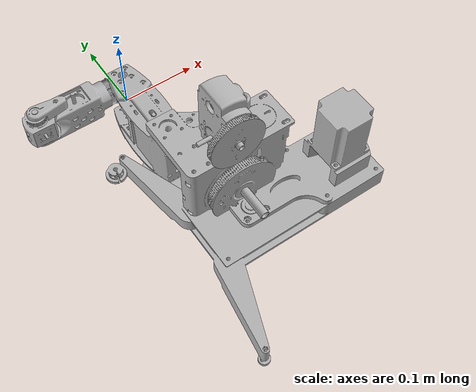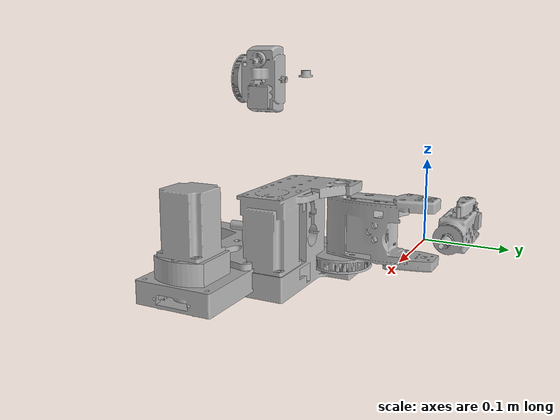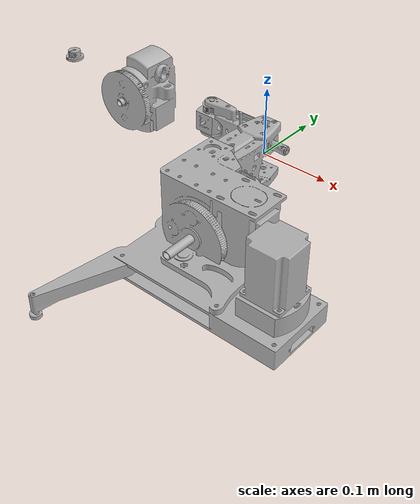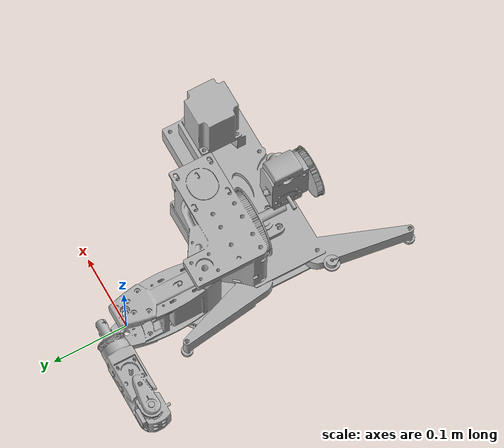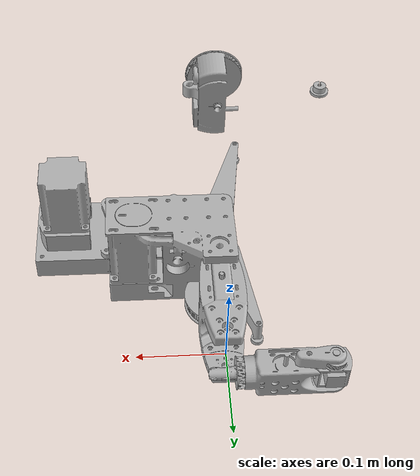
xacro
<?xml version="1.0" ?>
<robot name="srm_urdf" xmlns:xacro="http://www.ros.org/wiki/xacro">

<xacro:include filename="$(find srm_urdf_description)/urdf/materials.xacro" />
<xacro:include filename="$(find srm_urdf_description)/urdf/srm_urdf.trans" />
<xacro:include filename="$(find srm_urdf_description)/urdf/srm_urdf.gazebo" />
<link name="base_link">
  <inertial>
    <origin xyz="0.10568381868504924 -0.22501556785667357 -0.014402567458913605" rpy="0 0 0"/>
    <mass value="6.7691812168031795"/>
    <inertia ixx="0.024906" iyy="0.065241" izz="0.072898" ixy="-0.006015" iyz="-0.00098" ixz="-0.011564"/>
  </inertial>
  <visual>
    <origin xyz="0 0 0" rpy="0 0 0"/>
    <geometry>
      <mesh filename="package://srm_urdf_description/meshes/base_link.stl" scale="0.001 0.001 0.001"/>
    </geometry>
    <material name="silver"/>
  </visual>
  <collision>
    <origin xyz="0 0 0" rpy="0 0 0"/>
    <geometry>
      <mesh filename="package://srm_urdf_description/meshes/base_link.stl" scale="0.001 0.001 0.001"/>
    </geometry>
  </collision>
</link>

<link name="link_0_1">
  <inertial>
    <origin xyz="0.0057414043781948 -0.0017004352036209813 0.04202043065382762" rpy="0 0 0"/>
    <mass value="7.354010694296477"/>
    <inertia ixx="0.013079" iyy="0.016572" izz="0.022247" ixy="8.9e-05" iyz="0.000312" ixz="0.000187"/>
  </inertial>
  <visual>
    <origin xyz="-0.047 0.219 0.0135" rpy="0 0 0"/>
    <geometry>
      <mesh filename="package://srm_urdf_description/meshes/link_0_1.stl" scale="0.001 0.001 0.001"/>
    </geometry>
    <material name="silver"/>
  </visual>
  <collision>
    <origin xyz="-0.047 0.219 0.0135" rpy="0 0 0"/>
    <geometry>
      <mesh filename="package://srm_urdf_description/meshes/link_0_1.stl" scale="0.001 0.001 0.001"/>
    </geometry>
  </collision>
</link>

<link name="link_1_1">
  <inertial>
    <origin xyz="0.0007062283060266377 0.00121973453428173 0.03249181663373098" rpy="0 0 0"/>
    <mass value="2.8137687577682"/>
    <inertia ixx="0.006245" iyy="0.00427" izz="0.003148" ixy="2.9e-05" iyz="0.000882" ixz="-4.3e-05"/>
  </inertial>
  <visual>
    <origin xyz="-0.0 0.21875 -0.0815" rpy="0 0 0"/>
    <geometry>
      <mesh filename="package://srm_urdf_description/meshes/link_1_1.stl" scale="0.001 0.001 0.001"/>
    </geometry>
    <material name="silver"/>
  </visual>
  <collision>
    <origin xyz="-0.0 0.21875 -0.0815" rpy="0 0 0"/>
    <geometry>
      <mesh filename="package://srm_urdf_description/meshes/link_1_1.stl" scale="0.001 0.001 0.001"/>
    </geometry>
  </collision>
</link>

<link name="link_2_1">
  <inertial>
    <origin xyz="0.005655179920826477 -0.03079535787345819 -0.0006639946683160425" rpy="0 0 0"/>
    <mass value="1.0334607047766426"/>
    <inertia ixx="0.000804" iyy="0.00064" izz="0.000441" ixy="-3.7e-05" iyz="2e-06" ixz="1e-06"/>
  </inertial>
  <visual>
    <origin xyz="-0.0 0.19625 -0.1915" rpy="0 0 0"/>
    <geometry>
      <mesh filename="package://srm_urdf_description/meshes/link_2_1.stl" scale="0.001 0.001 0.001"/>
    </geometry>
    <material name="silver"/>
  </visual>
  <collision>
    <origin xyz="-0.0 0.19625 -0.1915" rpy="0 0 0"/>
    <geometry>
      <mesh filename="package://srm_urdf_description/meshes/link_2_1.stl" scale="0.001 0.001 0.001"/>
    </geometry>
  </collision>
</link>

<link name="link_3_1">
  <inertial>
    <origin xyz="-0.04727234675295872 0.00035711161454010654 8.218171693413767e-06" rpy="0 0 0"/>
    <mass value="0.8514020966909932"/>
    <inertia ixx="0.000228" iyy="0.000818" izz="0.000894" ixy="-1.1e-05" iyz="-0.0" ixz="-0.0"/>
  </inertial>
  <visual>
    <origin xyz="0.009 0.21925 -0.2175" rpy="0 0 0"/>
    <geometry>
      <mesh filename="package://srm_urdf_description/meshes/link_3_1.stl" scale="0.001 0.001 0.001"/>
    </geometry>
    <material name="silver"/>
  </visual>
  <collision>
    <origin xyz="0.009 0.21925 -0.2175" rpy="0 0 0"/>
    <geometry>
      <mesh filename="package://srm_urdf_description/meshes/link_3_1.stl" scale="0.001 0.001 0.001"/>
    </geometry>
  </collision>
</link>

<link name="link_4_1">
  <inertial>
    <origin xyz="0.0003315466010008067 -0.018388337647376907 -0.0009813987579137262" rpy="0 0 0"/>
    <mass value="0.24817393543208355"/>
    <inertia ixx="5.5e-05" iyy="4.2e-05" izz="5.4e-05" ixy="-0.0" iyz="1e-06" ixz="-0.0"/>
  </inertial>
  <visual>
    <origin xyz="0.116 0.20225 -0.2175" rpy="0 0 0"/>
    <geometry>
      <mesh filename="package://srm_urdf_description/meshes/link_4_1.stl" scale="0.001 0.001 0.001"/>
    </geometry>
    <material name="silver"/>
  </visual>
  <collision>
    <origin xyz="0.116 0.20225 -0.2175" rpy="0 0 0"/>
    <geometry>
      <mesh filename="package://srm_urdf_description/meshes/link_4_1.stl" scale="0.001 0.001 0.001"/>
    </geometry>
  </collision>
</link>

<link name="link_5_1">
  <inertial>
    <origin xyz="9.074951971173306e-05 0.0005147438381353509 0.0011488829522399435" rpy="0 0 0"/>
    <mass value="0.01250167594432261"/>
    <inertia ixx="0.0" iyy="0.0" izz="0.0" ixy="-0.0" iyz="-0.0" ixz="-0.0"/>
  </inertial>
  <visual>
    <origin xyz="0.115952 0.21825 -0.1927" rpy="0 0 0"/>
    <geometry>
      <mesh filename="package://srm_urdf_description/meshes/link_5_1.stl" scale="0.001 0.001 0.001"/>
    </geometry>
    <material name="silver"/>
  </visual>
  <collision>
    <origin xyz="0.115952 0.21825 -0.1927" rpy="0 0 0"/>
    <geometry>
      <mesh filename="package://srm_urdf_description/meshes/link_5_1.stl" scale="0.001 0.001 0.001"/>
    </geometry>
  </collision>
</link>

<joint name="joint_0" type="revolute">
  <origin xyz="0.047 -0.219 -0.0135" rpy="0 0 0"/>
  <parent link="base_link"/>
  <child link="link_0_1"/>
  <axis xyz="0.0 0.0 1.0"/>
  <limit upper="1.570796" lower="-1.570796" effort="100" velocity="100"/>
</joint>

<joint name="joint_1" type="revolute">
  <origin xyz="-0.047 0.00025 0.095" rpy="0 0 0"/>
  <parent link="link_0_1"/>
  <child link="link_1_1"/>
  <axis xyz="-0.0 1.0 0.0"/>
  <limit upper="1.48353" lower="-1.745329" effort="100" velocity="100"/>
</joint>

<joint name="joint_2" type="revolute">
  <origin xyz="0.0 0.0225 0.11" rpy="0 0 0"/>
  <parent link="link_1_1"/>
  <child link="link_2_1"/>
  <axis xyz="0.0 1.0 -0.0"/>
  <limit upper="3.316126" lower="-0.785398" effort="100" velocity="100"/>
</joint>

<joint name="joint_3" type="revolute">
  <origin xyz="-0.009 -0.023 0.026" rpy="0 0 0"/>
  <parent link="link_2_1"/>
  <child link="link_3_1"/>
  <axis xyz="1.0 -0.0 -0.0"/>
  <limit upper="3.141593" lower="-3.141593" effort="100" velocity="100"/>
</joint>

<joint name="joint_4" type="revolute">
  <origin xyz="-0.107 0.017 0.0" rpy="0 0 0"/>
  <parent link="link_3_1"/>
  <child link="link_4_1"/>
  <axis xyz="0.0 1.0 -0.0"/>
  <limit upper="3.752458" lower="-0.523599" effort="100" velocity="100"/>
</joint>

<joint name="joint_5" type="revolute">
  <origin xyz="4.8e-05 -0.016 -0.0248" rpy="0 0 0"/>
  <parent link="link_4_1"/>
  <child link="link_5_1"/>
  <axis xyz="-0.0 -0.0 -1.0"/>
  <limit upper="3.141593" lower="-3.141593" effort="100" velocity="100"/>
</joint>

</robot>

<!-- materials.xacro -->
<robot name="srm_urdf" xmlns:xacro="http://www.ros.org/wiki/xacro" >

<material name="silver">
  <color rgba="0.700 0.700 0.700 1.000"/>
</material>

</robot>

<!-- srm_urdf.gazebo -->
<robot name="srm_urdf" xmlns:xacro="http://www.ros.org/wiki/xacro" >

<xacro:property name="body_color" value="Gazebo/Silver" />

<gazebo>
  <plugin name="gazebo_ros_control" filename="libgazebo_ros_control.so"/>
  <robotNamespace>/srm_urdf</robotNamespace>
</gazebo>
<gazebo reference="base_link">
  <material>${body_color}</material>
  <mu1>0.2</mu1>
  <mu2>0.2</mu2>
  <selfCollide>true</selfCollide>
  <gravity>true</gravity>
</gazebo>

<gazebo reference="link_0_1">
  <material>${body_color}</material>
  <mu1>0.2</mu1>
  <mu2>0.2</mu2>
  <selfCollide>true</selfCollide>
</gazebo>

<gazebo reference="link_1_1">
  <material>${body_color}</material>
  <mu1>0.2</mu1>
  <mu2>0.2</mu2>
  <selfCollide>true</selfCollide>
</gazebo>

<gazebo reference="link_2_1">
  <material>${body_color}</material>
  <mu1>0.2</mu1>
  <mu2>0.2</mu2>
  <selfCollide>true</selfCollide>
</gazebo>

<gazebo reference="link_3_1">
  <material>${body_color}</material>
  <mu1>0.2</mu1>
  <mu2>0.2</mu2>
  <selfCollide>true</selfCollide>
</gazebo>

<gazebo reference="link_4_1">
  <material>${body_color}</material>
  <mu1>0.2</mu1>
  <mu2>0.2</mu2>
  <selfCollide>true</selfCollide>
</gazebo>

<gazebo reference="link_5_1">
  <material>${body_color}</material>
  <mu1>0.2</mu1>
  <mu2>0.2</mu2>
  <selfCollide>true</selfCollide>
</gazebo>

</robot>
